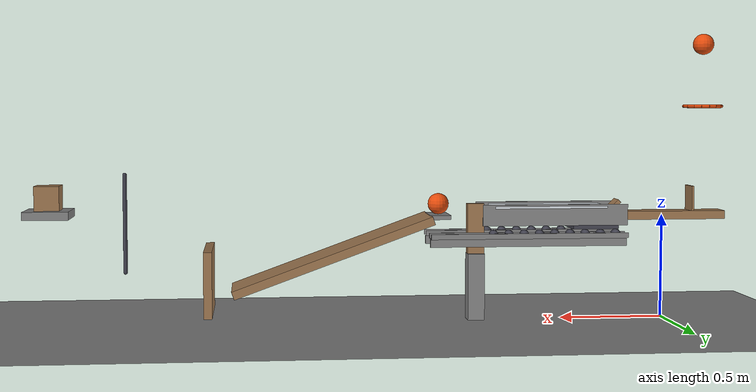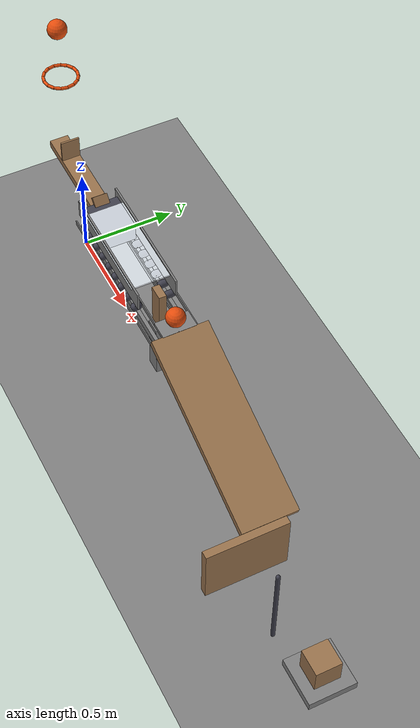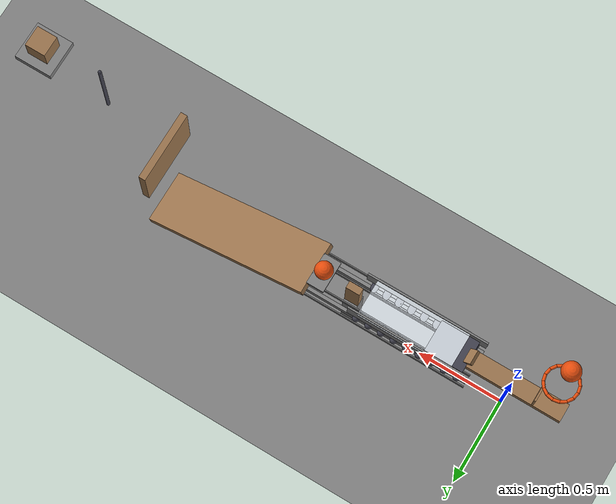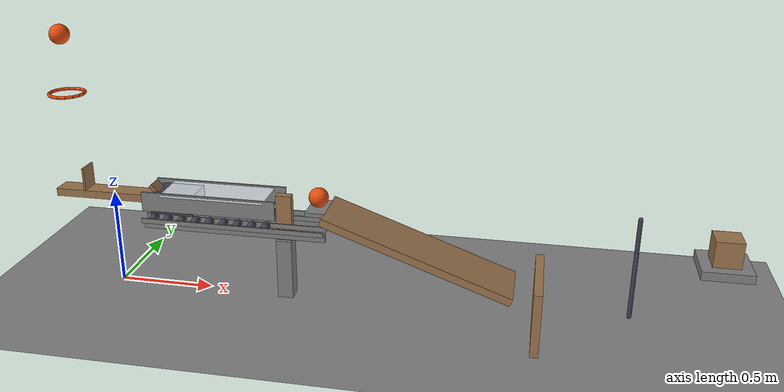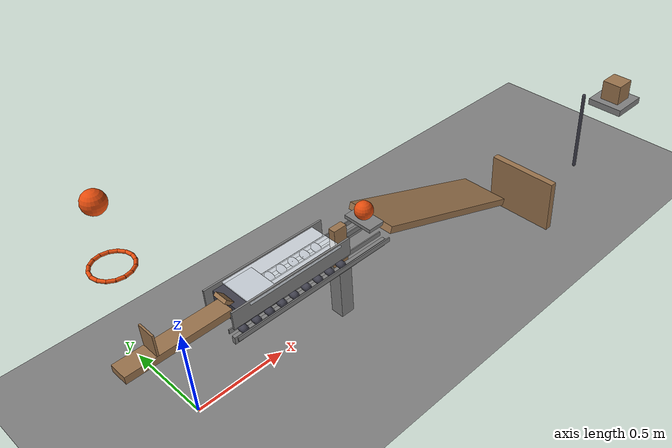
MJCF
<mujoco model="outboard_roller_contact_chain">
  <compiler angle="radian"/>
  <option timestep="0.002"/>
  <worldbody>
    <geom name="floor" type="plane" size="8 8 0.1" friction="0.72 0 0"/>
    <body name="ring1">
      <geom name="ring1_00" type="capsule" size="0.008" fromto="-0.10999 0 1.02627 -0.116689 0.0336761 1.02627" friction="0.72 0 0" solref="0.01 1" rgba="0.9 0.3 0.05 1"/>
      <geom name="ring1_01" type="capsule" size="0.008" fromto="-0.116689 0.0336761 1.02627 -0.135765 0.0622254 1.02627" friction="0.72 0 0" solref="0.01 1" rgba="0.9 0.3 0.05 1"/>
      <geom name="ring1_02" type="capsule" size="0.008" fromto="-0.135765 0.0622254 1.02627 -0.164314 0.0813014 1.02627" friction="0.72 0 0" solref="0.01 1" rgba="0.9 0.3 0.05 1"/>
      <geom name="ring1_03" type="capsule" size="0.008" fromto="-0.164314 0.0813014 1.02627 -0.19799 0.088 1.02627" friction="0.72 0 0" solref="0.01 1" rgba="0.9 0.3 0.05 1"/>
      <geom name="ring1_04" type="capsule" size="0.008" fromto="-0.19799 0.088 1.02627 -0.231666 0.0813014 1.02627" friction="0.72 0 0" solref="0.01 1" rgba="0.9 0.3 0.05 1"/>
      <geom name="ring1_05" type="capsule" size="0.008" fromto="-0.231666 0.0813014 1.02627 -0.260215 0.0622254 1.02627" friction="0.72 0 0" solref="0.01 1" rgba="0.9 0.3 0.05 1"/>
      <geom name="ring1_06" type="capsule" size="0.008" fromto="-0.260215 0.0622254 1.02627 -0.279291 0.0336761 1.02627" friction="0.72 0 0" solref="0.01 1" rgba="0.9 0.3 0.05 1"/>
      <geom name="ring1_07" type="capsule" size="0.008" fromto="-0.279291 0.0336761 1.02627 -0.28599 1.07769e-17 1.02627" friction="0.72 0 0" solref="0.01 1" rgba="0.9 0.3 0.05 1"/>
      <geom name="ring1_08" type="capsule" size="0.008" fromto="-0.28599 1.07769e-17 1.02627 -0.279291 -0.0336761 1.02627" friction="0.72 0 0" solref="0.01 1" rgba="0.9 0.3 0.05 1"/>
      <geom name="ring1_09" type="capsule" size="0.008" fromto="-0.279291 -0.0336761 1.02627 -0.260215 -0.0622254 1.02627" friction="0.72 0 0" solref="0.01 1" rgba="0.9 0.3 0.05 1"/>
      <geom name="ring1_10" type="capsule" size="0.008" fromto="-0.260215 -0.0622254 1.02627 -0.231666 -0.0813014 1.02627" friction="0.72 0 0" solref="0.01 1" rgba="0.9 0.3 0.05 1"/>
      <geom name="ring1_11" type="capsule" size="0.008" fromto="-0.231666 -0.0813014 1.02627 -0.19799 -0.088 1.02627" friction="0.72 0 0" solref="0.01 1" rgba="0.9 0.3 0.05 1"/>
      <geom name="ring1_12" type="capsule" size="0.008" fromto="-0.19799 -0.088 1.02627 -0.164314 -0.0813014 1.02627" friction="0.72 0 0" solref="0.01 1" rgba="0.9 0.3 0.05 1"/>
      <geom name="ring1_13" type="capsule" size="0.008" fromto="-0.164314 -0.0813014 1.02627 -0.135765 -0.0622254 1.02627" friction="0.72 0 0" solref="0.01 1" rgba="0.9 0.3 0.05 1"/>
      <geom name="ring1_14" type="capsule" size="0.008" fromto="-0.135765 -0.0622254 1.02627 -0.116689 -0.0336761 1.02627" friction="0.72 0 0" solref="0.01 1" rgba="0.9 0.3 0.05 1"/>
      <geom name="ring1_15" type="capsule" size="0.008" fromto="-0.116689 -0.0336761 1.02627 -0.10999 -2.15538e-17 1.02627" friction="0.72 0 0" solref="0.01 1" rgba="0.9 0.3 0.05 1"/>
    </body>
    <body name="ball1" pos="-0.19799 0 1.32627">
      <freejoint/>
      <geom name="ball1" type="sphere" pos="0 0 0" size="0.05" mass="0.2" condim="6" friction="0.72 0 0" solref="0.01 1" rgba="0.9 0.3 0.05 1"/>
    </body>
    <body name="lever1" pos="0 0 0.5">
      <joint name="lever_hinge" type="hinge" pos="0 0 0" axis="0 1 0" limited="true" range="0 0.785398" damping="0.04"/>
      <geom name="lever1" type="box" pos="0 0 0" size="0.3 0.05 0.02" mass="0.497" friction="0.72 0 0" solref="0.01 1" rgba="0.6 0.45 0.3 1"/>
      <geom name="lever striking face" type="box" pos="0.28 0 0.01" size="0.0848528 0.04 0.01" euler="0 0.785398 0" mass="0.001" friction="0.72 0 0" solref="0.01 1" rgba="0.6 0.45 0.3 1"/>
      <geom name="lever ball stop" type="box" pos="-0.14 0 0.08" size="0.005 0.05 0.06" mass="0.002" friction="0.72 0 0" solref="0.01 1" rgba="0.6 0.45 0.3 1"/>
    </body>
    <body name="left bearing rail">
      <geom name="left bearing rail" type="box" pos="0.675 0.085 0.38" size="0.475 0.01 0.02" friction="0.72 0 0" solref="0.01 1"/>
    </body>
    <body name="right bearing rail">
      <geom name="right bearing rail" type="box" pos="0.675 -0.085 0.38" size="0.475 0.01 0.02" friction="0.72 0 0" solref="0.01 1"/>
    </body>
    <body name="left track rollers1" pos="0.255 0.09 0.42">
      <freejoint/>
      <geom name="left track rollers1" type="capsule" size="0.02" fromto="0 -0.01 0 0 0.01 0" mass="0.001" friction="0.72 0 0" solref="0.01 1" rgba="0.25 0.25 0.3 1"/>
    </body>
    <body name="left track rollers2" pos="0.329 0.09 0.42">
      <freejoint/>
      <geom name="left track rollers2" type="capsule" size="0.02" fromto="0 -0.01 0 0 0.01 0" mass="0.001" friction="0.72 0 0" solref="0.01 1" rgba="0.25 0.25 0.3 1"/>
    </body>
    <body name="left track rollers3" pos="0.403 0.09 0.42">
      <freejoint/>
      <geom name="left track rollers3" type="capsule" size="0.02" fromto="0 -0.01 0 0 0.01 0" mass="0.001" friction="0.72 0 0" solref="0.01 1" rgba="0.25 0.25 0.3 1"/>
    </body>
    <body name="left track rollers4" pos="0.477 0.09 0.42">
      <freejoint/>
      <geom name="left track rollers4" type="capsule" size="0.02" fromto="0 -0.01 0 0 0.01 0" mass="0.001" friction="0.72 0 0" solref="0.01 1" rgba="0.25 0.25 0.3 1"/>
    </body>
    <body name="left track rollers5" pos="0.551 0.09 0.42">
      <freejoint/>
      <geom name="left track rollers5" type="capsule" size="0.02" fromto="0 -0.01 0 0 0.01 0" mass="0.001" friction="0.72 0 0" solref="0.01 1" rgba="0.25 0.25 0.3 1"/>
    </body>
    <body name="left track rollers6" pos="0.625 0.09 0.42">
      <freejoint/>
      <geom name="left track rollers6" type="capsule" size="0.02" fromto="0 -0.01 0 0 0.01 0" mass="0.001" friction="0.72 0 0" solref="0.01 1" rgba="0.25 0.25 0.3 1"/>
    </body>
    <body name="left track rollers7" pos="0.699 0.09 0.42">
      <freejoint/>
      <geom name="left track rollers7" type="capsule" size="0.02" fromto="0 -0.01 0 0 0.01 0" mass="0.001" friction="0.72 0 0" solref="0.01 1" rgba="0.25 0.25 0.3 1"/>
    </body>
    <body name="left track rollers8" pos="0.773 0.09 0.42">
      <freejoint/>
      <geom name="left track rollers8" type="capsule" size="0.02" fromto="0 -0.01 0 0 0.01 0" mass="0.001" friction="0.72 0 0" solref="0.01 1" rgba="0.25 0.25 0.3 1"/>
    </body>
    <body name="left track rollers9" pos="0.847 0.09 0.42">
      <freejoint/>
      <geom name="left track rollers9" type="capsule" size="0.02" fromto="0 -0.01 0 0 0.01 0" mass="0.001" friction="0.72 0 0" solref="0.01 1" rgba="0.25 0.25 0.3 1"/>
    </body>
    <body name="right track rollers1" pos="0.255 -0.09 0.42">
      <freejoint/>
      <geom name="right track rollers1" type="capsule" size="0.02" fromto="0 0.01 0 0 -0.01 0" mass="0.001" friction="0.72 0 0" solref="0.01 1" rgba="0.25 0.25 0.3 1"/>
    </body>
    <body name="right track rollers2" pos="0.329 -0.09 0.42">
      <freejoint/>
      <geom name="right track rollers2" type="capsule" size="0.02" fromto="0 0.01 0 0 -0.01 0" mass="0.001" friction="0.72 0 0" solref="0.01 1" rgba="0.25 0.25 0.3 1"/>
    </body>
    <body name="right track rollers3" pos="0.403 -0.09 0.42">
      <freejoint/>
      <geom name="right track rollers3" type="capsule" size="0.02" fromto="0 0.01 0 0 -0.01 0" mass="0.001" friction="0.72 0 0" solref="0.01 1" rgba="0.25 0.25 0.3 1"/>
    </body>
    <body name="right track rollers4" pos="0.477 -0.09 0.42">
      <freejoint/>
      <geom name="right track rollers4" type="capsule" size="0.02" fromto="0 0.01 0 0 -0.01 0" mass="0.001" friction="0.72 0 0" solref="0.01 1" rgba="0.25 0.25 0.3 1"/>
    </body>
    <body name="right track rollers5" pos="0.551 -0.09 0.42">
      <freejoint/>
      <geom name="right track rollers5" type="capsule" size="0.02" fromto="0 0.01 0 0 -0.01 0" mass="0.001" friction="0.72 0 0" solref="0.01 1" rgba="0.25 0.25 0.3 1"/>
    </body>
    <body name="right track rollers6" pos="0.625 -0.09 0.42">
      <freejoint/>
      <geom name="right track rollers6" type="capsule" size="0.02" fromto="0 0.01 0 0 -0.01 0" mass="0.001" friction="0.72 0 0" solref="0.01 1" rgba="0.25 0.25 0.3 1"/>
    </body>
    <body name="right track rollers7" pos="0.699 -0.09 0.42">
      <freejoint/>
      <geom name="right track rollers7" type="capsule" size="0.02" fromto="0 0.01 0 0 -0.01 0" mass="0.001" friction="0.72 0 0" solref="0.01 1" rgba="0.25 0.25 0.3 1"/>
    </body>
    <body name="right track rollers8" pos="0.773 -0.09 0.42">
      <freejoint/>
      <geom name="right track rollers8" type="capsule" size="0.02" fromto="0 0.01 0 0 -0.01 0" mass="0.001" friction="0.72 0 0" solref="0.01 1" rgba="0.25 0.25 0.3 1"/>
    </body>
    <body name="right track rollers9" pos="0.847 -0.09 0.42">
      <freejoint/>
      <geom name="right track rollers9" type="capsule" size="0.02" fromto="0 0.01 0 0 -0.01 0" mass="0.001" friction="0.72 0 0" solref="0.01 1" rgba="0.25 0.25 0.3 1"/>
    </body>
    <body name="left inner roller guide">
      <geom name="left inner roller guide" type="box" pos="0.675 0.056 0.4125" size="0.475 0.003 0.0125" friction="0.72 0 0" solref="0.01 1"/>
    </body>
    <body name="right inner roller guide">
      <geom name="right inner roller guide" type="box" pos="0.675 -0.056 0.4125" size="0.475 0.003 0.0125" friction="0.72 0 0" solref="0.01 1"/>
    </body>
    <body name="left outer roller guide">
      <geom name="left outer roller guide" type="box" pos="0.675 0.124 0.4125" size="0.475 0.003 0.0125" friction="0.72 0 0" solref="0.01 1"/>
    </body>
    <body name="right outer roller guide">
      <geom name="right outer roller guide" type="box" pos="0.675 -0.124 0.4125" size="0.475 0.003 0.0125" friction="0.72 0 0" solref="0.01 1"/>
    </body>
    <body name="left cart guide">
      <geom name="left cart guide" type="box" pos="0.55 0.101 0.51" size="0.35 0.005 0.05" friction="0.72 0 0" solref="0.01 1"/>
    </body>
    <body name="right cart guide">
      <geom name="right cart guide" type="box" pos="0.55 -0.101 0.51" size="0.35 0.005 0.05" friction="0.72 0 0" solref="0.01 1"/>
    </body>
    <body name="cart retaining roof">
      <geom name="cart retaining roof" type="box" pos="0.57 0 0.547" size="0.27 0.11 0.005" friction="0.72 0 0" solref="0.01 1" rgba="0.92 0.95 0.98 0.85"/>
    </body>
    <body name="cart1" pos="0.35 0 0.49">
      <freejoint/>
      <geom name="cart1" type="box" pos="0 0 0" size="0.11 0.09 0.05" mass="0.5" friction="0.72 0 0" solref="0.01 1" rgba="0.25 0.25 0.3 1"/>
    </body>
    <body name="domino pedestal">
      <geom name="domino pedestal" type="box" pos="0.92 0 0.16" size="0.04 0.04 0.16" friction="0.72 0 0" solref="0.01 1"/>
    </body>
    <body name="domino1" pos="0.92 0 0.44">
      <freejoint/>
      <geom name="domino1" type="box" pos="0 0 0" size="0.04 0.02 0.12" mass="0.25" friction="0.72 0 0" solref="0.01 1" rgba="0.6 0.45 0.3 1"/>
    </body>
    <body name="ball perch">
      <geom name="ball perch" type="box" pos="1.1 0 0.5008" size="0.05 0.09 0.01" friction="0.72 0 0" solref="0.01 1"/>
    </body>
    <body name="ball2" pos="1.1 0 0.5608">
      <freejoint/>
      <geom name="ball2" type="sphere" pos="0 0 0" size="0.05" mass="0.2" condim="6" friction="0.72 0 0" solref="0.01 1" rgba="0.9 0.3 0.05 1"/>
    </body>
    <body name="ramp1">
      <geom name="ramp1" type="box" pos="1.60985 0 0.32101" size="0.5 0.15 0.02" euler="0 0.349066 0" friction="0.72 0 0" solref="0.01 1" rgba="0.6 0.45 0.3 1"/>
    </body>
    <body name="door1" pos="2.19969 -0.4 0.18">
      <joint name="door_hinge" type="hinge" pos="0 0 0" axis="0 0 1" limited="true" range="-1.22173 0" damping="0.04"/>
      <geom name="door1" type="box" pos="0 0.21 0" size="0.02 0.21 0.16" mass="0.45" friction="0.72 0 0" solref="0.01 1" rgba="0.6 0.45 0.3 1"/>
    </body>
    <body name="pendulum1" pos="2.60969 -0.274 0.2">
      <joint name="pendulum_hinge" type="hinge" pos="0 0 0" axis="0 1 0" limited="true" range="0 0.663225" damping="0.04"/>
      <geom name="pendulum1" type="capsule" size="0.01" fromto="0 0 0.01 0 0 0.49" mass="0.35" friction="0.72 0 0" solref="0.01 1" rgba="0.25 0.25 0.3 1"/>
    </body>
    <body name="block pedestal">
      <geom name="block pedestal" type="box" pos="2.97769 -0.274 0.5" size="0.11 0.11 0.02" friction="0.72 0 0" solref="0.01 1"/>
    </body>
    <body name="block1" pos="2.97769 -0.274 0.58">
      <freejoint/>
      <geom name="block1" type="box" pos="0 0 0" size="0.06 0.06 0.06" mass="0.35" friction="0.72 0 0" solref="0.01 1" rgba="0.6 0.45 0.3 1"/>
    </body>
  </worldbody>
  <keyframe>
    <key name="start" qpos="-0.19799 0 1.32627 1 0 0 0 0.785398 0.255 0.09 0.42 1 0 0 0 0.329 0.09 0.42 1 0 0 0 0.403 0.09 0.42 1 0 0 0 0.477 0.09 0.42 1 0 0 0 0.551 0.09 0.42 1 0 0 0 0.625 0.09 0.42 1 0 0 0 0.699 0.09 0.42 1 0 0 0 0.773 0.09 0.42 1 0 0 0 0.847 0.09 0.42 1 0 0 0 0.255 -0.09 0.42 1 0 0 0 0.329 -0.09 0.42 1 0 0 0 0.403 -0.09 0.42 1 0 0 0 0.477 -0.09 0.42 1 0 0 0 0.551 -0.09 0.42 1 0 0 0 0.625 -0.09 0.42 1 0 0 0 0.699 -0.09 0.42 1 0 0 0 0.773 -0.09 0.42 1 0 0 0 0.847 -0.09 0.42 1 0 0 0 0.35 0 0.49 1 0 0 0 0.92 0 0.44 1 0 0 0 1.1 0 0.5608 1 0 0 0 0 0 2.97769 -0.274 0.58 1 0 0 0" qvel="0 0 0 0 0 0 0 0 0 0 0 0 0 0 0 0 0 0 0 0 0 0 0 0 0 0 0 0 0 0 0 0 0 0 0 0 0 0 0 0 0 0 0 0 0 0 0 0 0 0 0 0 0 0 0 0 0 0 0 0 0 0 0 0 0 0 0 0 0 0 0 0 0 0 0 0 0 0 0 0 0 0 0 0 0 0 0 0 0 0 0 0 0 0 0 0 0 0 0 0 0 0 0 0 0 0 0 0 0 0 0 0 0 0 0 0 0 0 0 0 0 0 0 0 0 0 0 0 0 0 0 0 0 0 0 0 0 0 0 0 0"/>
  </keyframe>
</mujoco>
